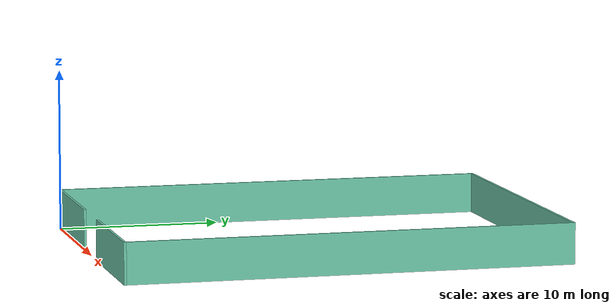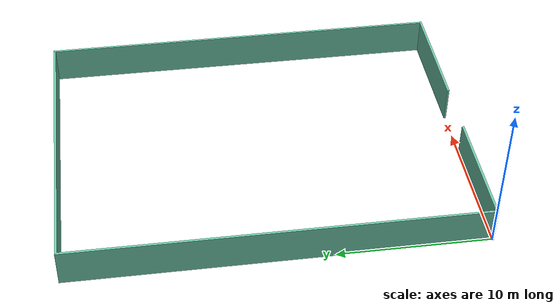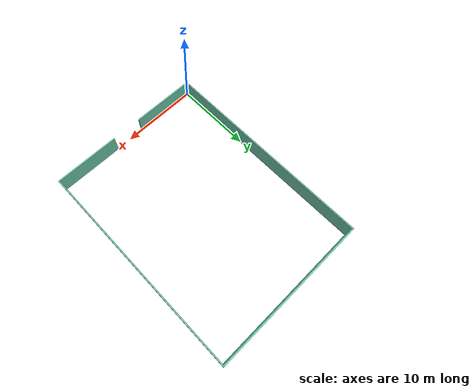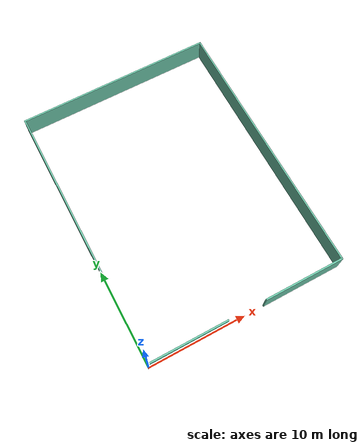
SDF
<?xml version='1.0'?>
<sdf version='1.7'>
  <model name='Wall-Building'>
    <pose>10.0315 13.5 0 0 -0 0</pose>
    <link name='Wall_15'>
      <collision name='Wall_15_Collision'>
        <geometry>
          <box>
            <size>8.15 0.15 2.5</size>
          </box>
        </geometry>
        <pose>0 0 1.25 0 -0 0</pose>
      </collision>
      <visual name='Wall_15_Visual'>
        <pose>0 0 1.25 0 -0 0</pose>
        <geometry>
          <box>
            <size>8.15 0.15 2.5</size>
          </box>
        </geometry>
        <material>
          <script>
            <uri>file://media/materials/scripts/gazebo.material</uri>
            <name>Gazebo/Grey</name>
          </script>
          <ambient>0.435294 0.796078 0.67451 1</ambient>
        </material>
        <meta>
          <layer>0</layer>
        </meta>
      </visual>
      <pose>-6.0315 -13.5 0 0 -0 0</pose>
    </link>
    <link name='Wall_20'>
      <collision name='Wall_20_Collision'>
        <geometry>
          <box>
            <size>27.15 0.15 2.5</size>
          </box>
        </geometry>
        <pose>0 0 1.25 0 -0 0</pose>
      </collision>
      <visual name='Wall_20_Visual'>
        <pose>0 0 1.25 0 -0 0</pose>
        <geometry>
          <box>
            <size>27.15 0.15 2.5</size>
          </box>
        </geometry>
        <material>
          <script>
            <uri>file://media/materials/scripts/gazebo.material</uri>
            <name>Gazebo/Grey</name>
          </script>
          <ambient>0.435294 0.796078 0.67451 1</ambient>
        </material>
        <meta>
          <layer>0</layer>
        </meta>
      </visual>
      <pose>-10.0315 0 0 0 -0 1.5708</pose>
    </link>
    <link name='Wall_25'>
      <collision name='Wall_25_Collision'>
        <geometry>
          <box>
            <size>20.213 0.15 2.5</size>
          </box>
        </geometry>
        <pose>0 0 1.25 0 -0 0</pose>
      </collision>
      <visual name='Wall_25_Visual'>
        <pose>0 0 1.25 0 -0 0</pose>
        <geometry>
          <box>
            <size>20.213 0.15 2.5</size>
          </box>
        </geometry>
        <material>
          <script>
            <uri>file://media/materials/scripts/gazebo.material</uri>
            <name>Gazebo/Grey</name>
          </script>
          <ambient>0.435294 0.796078 0.67451 1</ambient>
        </material>
        <meta>
          <layer>0</layer>
        </meta>
      </visual>
      <pose>0 13.5 0 0 -0 0</pose>
    </link>
    <link name='Wall_27'>
      <collision name='Wall_27_Collision'>
        <geometry>
          <box>
            <size>27.15 0.15 2.5</size>
          </box>
        </geometry>
        <pose>0 0 1.25 0 -0 0</pose>
      </collision>
      <visual name='Wall_27_Visual'>
        <pose>0 0 1.25 0 -0 0</pose>
        <geometry>
          <box>
            <size>27.15 0.15 2.5</size>
          </box>
        </geometry>
        <material>
          <script>
            <uri>file://media/materials/scripts/gazebo.material</uri>
            <name>Gazebo/Grey</name>
          </script>
          <ambient>0.435294 0.796078 0.67451 1</ambient>
        </material>
        <meta>
          <layer>0</layer>
        </meta>
      </visual>
      <pose>10.0315 0 0 0 -0 -1.5708</pose>
    </link>
    <link name='Wall_29'>
      <collision name='Wall_29_Collision'>
        <geometry>
          <box>
            <size>8.213 0.15 2.5</size>
          </box>
        </geometry>
        <pose>0 0 1.25 0 -0 0</pose>
      </collision>
      <visual name='Wall_29_Visual'>
        <pose>0 0 1.25 0 -0 0</pose>
        <geometry>
          <box>
            <size>8.213 0.15 2.5</size>
          </box>
        </geometry>
        <material>
          <script>
            <uri>file://media/materials/scripts/gazebo.material</uri>
            <name>Gazebo/Grey</name>
          </script>
          <ambient>0.435294 0.796078 0.67451 1</ambient>
        </material>
        <meta>
          <layer>0</layer>
        </meta>
      </visual>
      <pose>6 -13.5 0 0 -0 3.14159</pose>
    </link>
    <static>1</static>
  </model>
</sdf>
